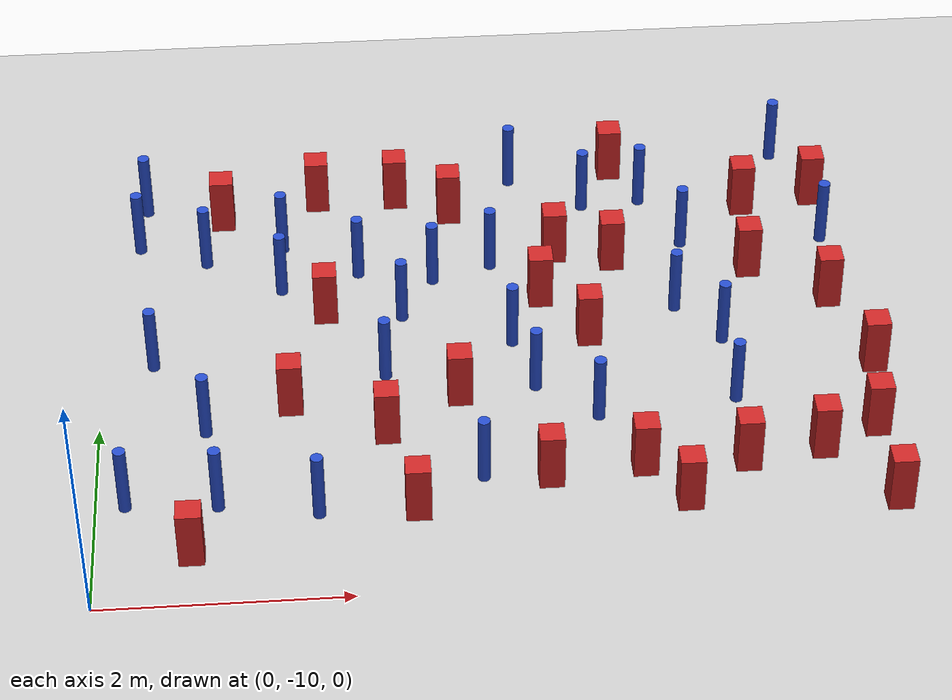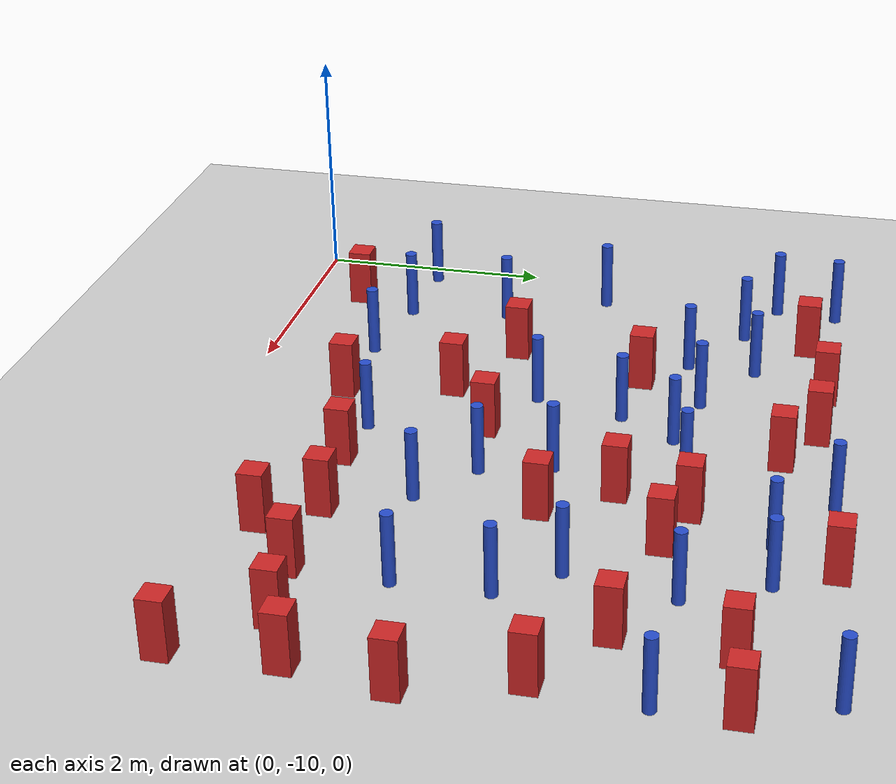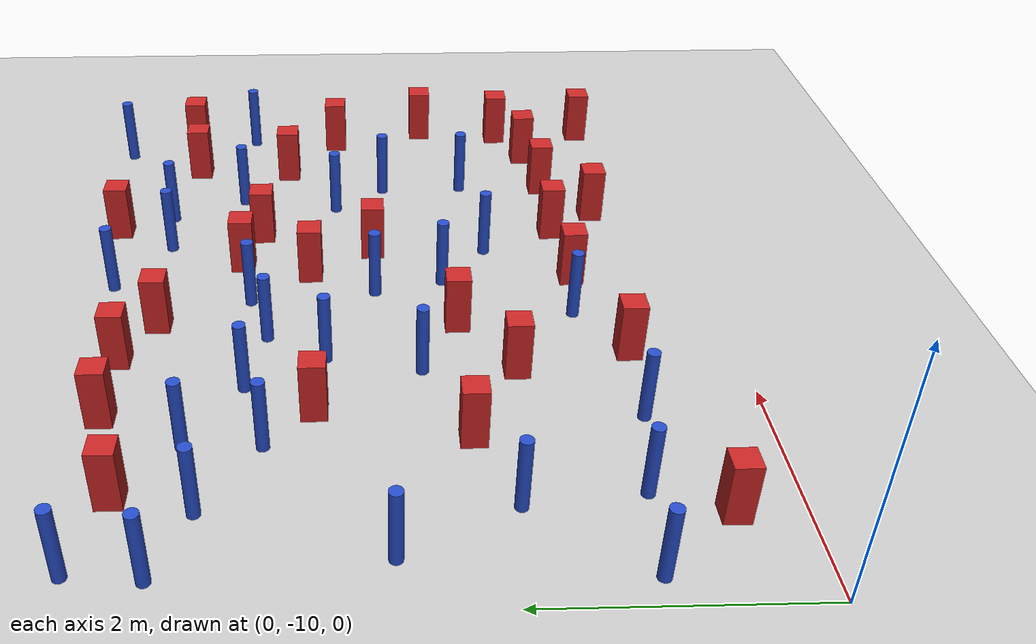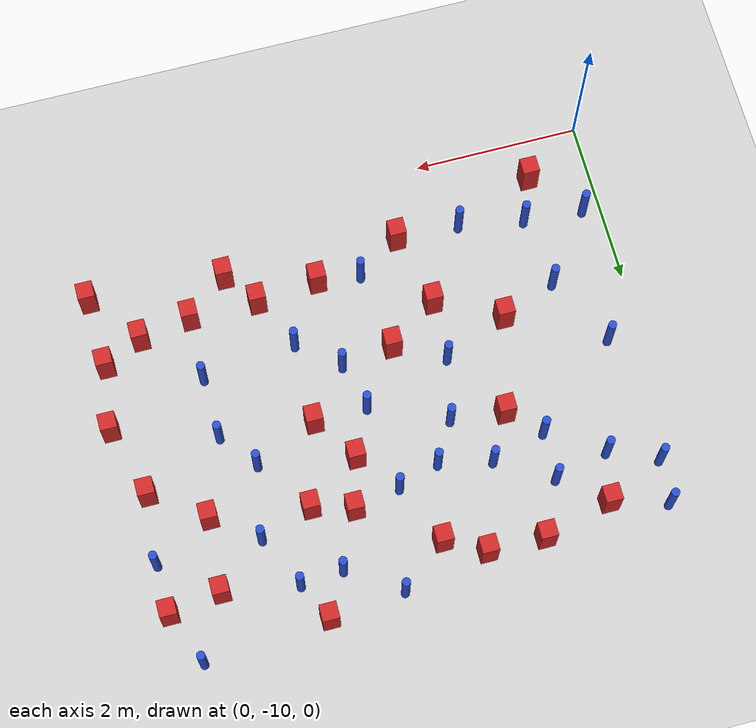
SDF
<sdf version="1.6">
 <world name="default">
  <model name="ground_plane">
   <static>1</static>
   <link name="link">
    <collision name="collision">
     <geometry><plane><normal>0 0 1</normal><size>100 100</size></plane></geometry>
     <surface><friction><ode><mu>100</mu><mu2>50</mu2></ode></friction></surface>
    </collision>
    <visual name="visual">
     <cast_shadows>0</cast_shadows>
     <geometry><plane><normal>0 0 1</normal><size>100 100</size></plane></geometry>
     <material>
      <ambient>1.0 1.0 1.0 1.0</ambient>
      <diffuse>0.8 0.8 0.8 1.0</diffuse>
      <specular>0.01 0.01 0.01 1.000000</specular>
     </material>
    </visual>
   </link>
  </model>
  <model name="pole_obstacle0">
   <static>true</static>
   <pose>3.38922952658 -7.14174087017 -9.47619616065e-06 5.49618799738e-07 2.3631041406e-07 -1.55090534801e-07</pose>
   <link name="link">
    <pose>0 0 0.3 0 -0 0</pose>
    <inertial>
     <mass>1</mass>
     <inertia><ixx>0.145833</ixx><ixy>0</ixy><ixz>0</ixz><iyy>0.145833</iyy><iyz>0</iyz><izz>0.125</izz></inertia>
    </inertial>
    <collision name="collision">
     <geometry><cylinder><radius>0.05</radius><length>.6</length></cylinder></geometry>
    </collision>
    <visual name="visual">
     <geometry><cylinder><radius>0.05</radius><length>.6</length></cylinder></geometry>
     <material>
      <script><name>Gazebo/Blue</name><uri>file://media/materials/scripts/gazebo.material</uri></script>
     </material>
    </visual>
   </link>
  </model>
  <model name="square_post_obstacle3">
   <static>true</static>
   <pose>5.75948002975 -8.64291530314 -6.11067671241e-07 -5.50515727128e-06 -8.79689657224e-07 2.37013304536e-05</pose>
   <link name="link">
    <pose>0 0 0.25 0 -0 0</pose>
    <inertial>
     <mass>100</mass>
     <inertia>
      <ixx>0.166667</ixx>
      <ixy>0</ixy>
      <ixz>0</ixz>
      <iyy>0.166667</iyy>
      <iyz>0</iyz>
      <izz>0.166667</izz>
     </inertia>
    </inertial>
    <collision name="collision"><geometry><box><size>.2 .2 .5</size></box></geometry></collision>
    <visual name="visual">
     <geometry><box><size>.2 .2 .5</size></box></geometry>
     <material>
      <script><name>Gazebo/Red</name><uri>file://media/materials/scripts/gazebo.material</uri></script>
     </material>
    </visual>
   </link>
  </model>
  <model name="square_post_obstacle10">
   <static>true</static>
   <pose>4.31607230512 -8.74429017073 -6.11067671241e-07 -5.50515727128e-06 -8.79689657224e-07 2.37013304536e-05</pose>
   <link name="link">
    <pose>0 0 0.25 0 -0 0</pose>
    <inertial>
     <mass>100</mass>
     <inertia>
      <ixx>0.166667</ixx>
      <ixy>0</ixy>
      <ixz>0</ixz>
      <iyy>0.166667</iyy>
      <iyz>0</iyz>
      <izz>0.166667</izz>
     </inertia>
    </inertial>
    <collision name="collision"><geometry><box><size>.2 .2 .5</size></box></geometry></collision>
    <visual name="visual">
     <geometry><box><size>.2 .2 .5</size></box></geometry>
     <material>
      <script><name>Gazebo/Red</name><uri>file://media/materials/scripts/gazebo.material</uri></script>
     </material>
    </visual>
   </link>
  </model>
  <model name="square_post_obstacle14">
   <static>true</static>
   <pose>5.53762369864 -5.44503028792 -6.11067671241e-07 -5.50515727128e-06 -8.79689657224e-07 2.37013304536e-05</pose>
   <link name="link">
    <pose>0 0 0.25 0 -0 0</pose>
    <inertial>
     <mass>100</mass>
     <inertia>
      <ixx>0.166667</ixx>
      <ixy>0</ixy>
      <ixz>0</ixz>
      <iyy>0.166667</iyy>
      <iyz>0</iyz>
      <izz>0.166667</izz>
     </inertia>
    </inertial>
    <collision name="collision"><geometry><box><size>.2 .2 .5</size></box></geometry></collision>
    <visual name="visual">
     <geometry><box><size>.2 .2 .5</size></box></geometry>
     <material>
      <script><name>Gazebo/Red</name><uri>file://media/materials/scripts/gazebo.material</uri></script>
     </material>
    </visual>
   </link>
  </model>
  <model name="square_post_obstacle17">
   <static>true</static>
   <pose>1.85319412373 -6.67931230852 -6.11067671241e-07 -5.50515727128e-06 -8.79689657224e-07 2.37013304536e-05</pose>
   <link name="link">
    <pose>0 0 0.25 0 -0 0</pose>
    <inertial>
     <mass>100</mass>
     <inertia>
      <ixx>0.166667</ixx>
      <ixy>0</ixy>
      <ixz>0</ixz>
      <iyy>0.166667</iyy>
      <iyz>0</iyz>
      <izz>0.166667</izz>
     </inertia>
    </inertial>
    <collision name="collision"><geometry><box><size>.2 .2 .5</size></box></geometry></collision>
    <visual name="visual">
     <geometry><box><size>.2 .2 .5</size></box></geometry>
     <material>
      <script><name>Gazebo/Red</name><uri>file://media/materials/scripts/gazebo.material</uri></script>
     </material>
    </visual>
   </link>
  </model>
  <model name="pole_obstacle23">
   <static>true</static>
   <pose>0.955390695818 -8.95729510847 -9.47619616065e-06 5.49618799737e-07 2.36310414031e-07 -1.55090534817e-07</pose>
   <link name="link">
    <pose>0 0 0.3 0 -0 0</pose>
    <inertial>
     <mass>1</mass>
     <inertia><ixx>0.145833</ixx><ixy>0</ixy><ixz>0</ixz><iyy>0.145833</iyy><iyz>0</iyz><izz>0.125</izz></inertia>
    </inertial>
    <collision name="collision">
     <geometry><cylinder><radius>0.05</radius><length>.6</length></cylinder></geometry>
    </collision>
    <visual name="visual">
     <geometry><cylinder><radius>0.05</radius><length>.6</length></cylinder></geometry>
     <material>
      <script><name>Gazebo/Blue</name><uri>file://media/materials/scripts/gazebo.material</uri></script>
     </material>
    </visual>
   </link>
  </model>
  <model name="pole_obstacle28">
   <static>true</static>
   <pose>0.278355375065 -5.67092488051 -9.47619616065e-06 5.49618799737e-07 2.36310414067e-07 -1.55090534795e-07</pose>
   <link name="link">
    <pose>0 0 0.3 0 -0 0</pose>
    <inertial>
     <mass>1</mass>
     <inertia><ixx>0.145833</ixx><ixy>0</ixy><ixz>0</ixz><iyy>0.145833</iyy><iyz>0</iyz><izz>0.125</izz></inertia>
    </inertial>
    <collision name="collision">
     <geometry><cylinder><radius>0.05</radius><length>.6</length></cylinder></geometry>
    </collision>
    <visual name="visual">
     <geometry><cylinder><radius>0.05</radius><length>.6</length></cylinder></geometry>
     <material>
      <script><name>Gazebo/Blue</name><uri>file://media/materials/scripts/gazebo.material</uri></script>
     </material>
    </visual>
   </link>
  </model>
  <model name="square_post_obstacle29">
   <static>true</static>
   <pose>2.30405123007 -8.21756652164 -6.11067671241e-07 -5.50515727128e-06 -8.79689657224e-07 2.37013304536e-05</pose>
   <link name="link">
    <pose>0 0 0.25 0 -0 0</pose>
    <inertial>
     <mass>100</mass>
     <inertia>
      <ixx>0.166667</ixx>
      <ixy>0</ixy>
      <ixz>0</ixz>
      <iyy>0.166667</iyy>
      <iyz>0</iyz>
      <izz>0.166667</izz>
     </inertia>
    </inertial>
    <collision name="collision"><geometry><box><size>.2 .2 .5</size></box></geometry></collision>
    <visual name="visual">
     <geometry><box><size>.2 .2 .5</size></box></geometry>
     <material>
      <script><name>Gazebo/Red</name><uri>file://media/materials/scripts/gazebo.material</uri></script>
     </material>
    </visual>
   </link>
  </model>
  <model name="pole_obstacle35">
   <static>true</static>
   <pose>2.32031925398 -7.49279866555 -9.47619616065e-06 5.49618799738e-07 2.3631041406e-07 -1.55090534801e-07</pose>
   <link name="link">
    <pose>0 0 0.3 0 -0 0</pose>
    <inertial>
     <mass>1</mass>
     <inertia><ixx>0.145833</ixx><ixy>0</ixy><ixz>0</ixz><iyy>0.145833</iyy><iyz>0</iyz><izz>0.125</izz></inertia>
    </inertial>
    <collision name="collision">
     <geometry><cylinder><radius>0.05</radius><length>.6</length></cylinder></geometry>
    </collision>
    <visual name="visual">
     <geometry><cylinder><radius>0.05</radius><length>.6</length></cylinder></geometry>
     <material>
      <script><name>Gazebo/Blue</name><uri>file://media/materials/scripts/gazebo.material</uri></script>
     </material>
    </visual>
   </link>
  </model>
  <model name="pole_obstacle40">
   <static>true</static>
   <pose>3.04126461013 -8.76440553091 -9.4761961606e-06 5.49618799729e-07 2.36310414e-07 -1.55090534824e-07</pose>
   <link name="link">
    <pose>0 0 0.3 0 -0 0</pose>
    <inertial>
     <mass>1</mass>
     <inertia><ixx>0.145833</ixx><ixy>0</ixy><ixz>0</ixz><iyy>0.145833</iyy><iyz>0</iyz><izz>0.125</izz></inertia>
    </inertial>
    <collision name="collision">
     <geometry><cylinder><radius>0.05</radius><length>.6</length></cylinder></geometry>
    </collision>
    <visual name="visual">
     <geometry><cylinder><radius>0.05</radius><length>.6</length></cylinder></geometry>
     <material>
      <script><name>Gazebo/Blue</name><uri>file://media/materials/scripts/gazebo.material</uri></script>
     </material>
    </visual>
   </link>
  </model>
  <model name="square_post_obstacle36">
   <static>true</static>
   <pose>4.62269496783 -9.15900267872 -6.11067671241e-07 -5.50515727128e-06 -8.79689657224e-07 2.37013304536e-05</pose>
   <link name="link">
    <pose>0 0 0.25 0 -0 0</pose>
    <inertial>
     <mass>100</mass>
     <inertia>
      <ixx>0.166667</ixx>
      <ixy>0</ixy>
      <ixz>0</ixz>
      <iyy>0.166667</iyy>
      <iyz>0</iyz>
      <izz>0.166667</izz>
     </inertia>
    </inertial>
    <collision name="collision"><geometry><box><size>.2 .2 .5</size></box></geometry></collision>
    <visual name="visual">
     <geometry><box><size>.2 .2 .5</size></box></geometry>
     <material>
      <script><name>Gazebo/Red</name><uri>file://media/materials/scripts/gazebo.material</uri></script>
     </material>
    </visual>
   </link>
  </model>
  <model name="pole_obstacle48">
   <static>true</static>
   <pose>1.48861509337 -6.32588567182 -9.47619616065e-06 5.49618799737e-07 2.36310414061e-07 -1.550905348e-07</pose>
   <link name="link">
    <pose>0 0 0.3 0 -0 0</pose>
    <inertial>
     <mass>1</mass>
     <inertia><ixx>0.145833</ixx><ixy>0</ixy><ixz>0</ixz><iyy>0.145833</iyy><iyz>0</iyz><izz>0.125</izz></inertia>
    </inertial>
    <collision name="collision">
     <geometry><cylinder><radius>0.05</radius><length>.6</length></cylinder></geometry>
    </collision>
    <visual name="visual">
     <geometry><cylinder><radius>0.05</radius><length>.6</length></cylinder></geometry>
     <material>
      <script><name>Gazebo/Blue</name><uri>file://media/materials/scripts/gazebo.material</uri></script>
     </material>
    </visual>
   </link>
  </model>
  <model name="pole_obstacle60">
   <static>true</static>
   <pose>5.15107844197 -7.9755211163 -9.47619616065e-06 5.49618799737e-07 2.36310414033e-07 -1.55090534817e-07</pose>
   <link name="link">
    <pose>0 0 0.3 0 -0 0</pose>
    <inertial>
     <mass>1</mass>
     <inertia><ixx>0.145833</ixx><ixy>0</ixy><ixz>0</ixz><iyy>0.145833</iyy><iyz>0</iyz><izz>0.125</izz></inertia>
    </inertial>
    <collision name="collision">
     <geometry><cylinder><radius>0.05</radius><length>.6</length></cylinder></geometry>
    </collision>
    <visual name="visual">
     <geometry><cylinder><radius>0.05</radius><length>.6</length></cylinder></geometry>
     <material>
      <script><name>Gazebo/Blue</name><uri>file://media/materials/scripts/gazebo.material</uri></script>
     </material>
    </visual>
   </link>
  </model>
  <model name="pole_obstacle61">
   <static>true</static>
   <pose>0.849337117978 -5.91250015087 -9.47619616065e-06 5.49618799737e-07 2.36310414065e-07 -1.55090534796e-07</pose>
   <link name="link">
    <pose>0 0 0.3 0 -0 0</pose>
    <inertial>
     <mass>1</mass>
     <inertia><ixx>0.145833</ixx><ixy>0</ixy><ixz>0</ixz><iyy>0.145833</iyy><iyz>0</iyz><izz>0.125</izz></inertia>
    </inertial>
    <collision name="collision">
     <geometry><cylinder><radius>0.05</radius><length>.6</length></cylinder></geometry>
    </collision>
    <visual name="visual">
     <geometry><cylinder><radius>0.05</radius><length>.6</length></cylinder></geometry>
     <material>
      <script><name>Gazebo/Blue</name><uri>file://media/materials/scripts/gazebo.material</uri></script>
     </material>
    </visual>
   </link>
  </model>
  <model name="pole_obstacle67">
   <static>true</static>
   <pose>1.50597967521 -5.75054505771 -9.47619616065e-06 5.49618799737e-07 2.36310414061e-07 -1.550905348e-07</pose>
   <link name="link">
    <pose>0 0 0.3 0 -0 0</pose>
    <inertial>
     <mass>1</mass>
     <inertia><ixx>0.145833</ixx><ixy>0</ixy><ixz>0</ixz><iyy>0.145833</iyy><iyz>0</iyz><izz>0.125</izz></inertia>
    </inertial>
    <collision name="collision">
     <geometry><cylinder><radius>0.05</radius><length>.6</length></cylinder></geometry>
    </collision>
    <visual name="visual">
     <geometry><cylinder><radius>0.05</radius><length>.6</length></cylinder></geometry>
     <material>
      <script><name>Gazebo/Blue</name><uri>file://media/materials/scripts/gazebo.material</uri></script>
     </material>
    </visual>
   </link>
  </model>
  <model name="square_post_obstacle54">
   <static>true</static>
   <pose>2.96192295163 -5.38280044245 -6.11067671241e-07 -5.50515727128e-06 -8.79689657224e-07 2.37013304536e-05</pose>
   <link name="link">
    <pose>0 0 0.25 0 -0 0</pose>
    <inertial>
     <mass>100</mass>
     <inertia>
      <ixx>0.166667</ixx>
      <ixy>0</ixy>
      <ixz>0</ixz>
      <iyy>0.166667</iyy>
      <iyz>0</iyz>
      <izz>0.166667</izz>
     </inertia>
    </inertial>
    <collision name="collision"><geometry><box><size>.2 .2 .5</size></box></geometry></collision>
    <visual name="visual">
     <geometry><box><size>.2 .2 .5</size></box></geometry>
     <material>
      <script><name>Gazebo/Red</name><uri>file://media/materials/scripts/gazebo.material</uri></script>
     </material>
    </visual>
   </link>
  </model>
  <model name="square_post_obstacle57">
   <static>true</static>
   <pose>6.15910161408 -5.34775371636 -6.11067671241e-07 -5.50515727128e-06 -8.79689657224e-07 2.37013304536e-05</pose>
   <link name="link">
    <pose>0 0 0.25 0 -0 0</pose>
    <inertial>
     <mass>100</mass>
     <inertia>
      <ixx>0.166667</ixx>
      <ixy>0</ixy>
      <ixz>0</ixz>
      <iyy>0.166667</iyy>
      <iyz>0</iyz>
      <izz>0.166667</izz>
     </inertia>
    </inertial>
    <collision name="collision"><geometry><box><size>.2 .2 .5</size></box></geometry></collision>
    <visual name="visual">
     <geometry><box><size>.2 .2 .5</size></box></geometry>
     <material>
      <script><name>Gazebo/Red</name><uri>file://media/materials/scripts/gazebo.material</uri></script>
     </material>
    </visual>
   </link>
  </model>
  <model name="square_post_obstacle63">
   <static>true</static>
   <pose>4.03128358904 -7.12685137249 -6.11067671241e-07 -5.50515727128e-06 -8.79689657224e-07 2.37013304536e-05</pose>
   <link name="link">
    <pose>0 0 0.25 0 -0 0</pose>
    <inertial>
     <mass>100</mass>
     <inertia>
      <ixx>0.166667</ixx>
      <ixy>0</ixy>
      <ixz>0</ixz>
      <iyy>0.166667</iyy>
      <iyz>0</iyz>
      <izz>0.166667</izz>
     </inertia>
    </inertial>
    <collision name="collision"><geometry><box><size>.2 .2 .5</size></box></geometry></collision>
    <visual name="visual">
     <geometry><box><size>.2 .2 .5</size></box></geometry>
     <material>
      <script><name>Gazebo/Red</name><uri>file://media/materials/scripts/gazebo.material</uri></script>
     </material>
    </visual>
   </link>
  </model>
  <model name="square_post_obstacle65">
   <static>true</static>
   <pose>2.50802618297 -9.11794423692 -6.11067671241e-07 -5.50515727128e-06 -8.79689657224e-07 2.37013304536e-05</pose>
   <link name="link">
    <pose>0 0 0.25 0 -0 0</pose>
    <inertial>
     <mass>100</mass>
     <inertia>
      <ixx>0.166667</ixx>
      <ixy>0</ixy>
      <ixz>0</ixz>
      <iyy>0.166667</iyy>
      <iyz>0</iyz>
      <izz>0.166667</izz>
     </inertia>
    </inertial>
    <collision name="collision"><geometry><box><size>.2 .2 .5</size></box></geometry></collision>
    <visual name="visual">
     <geometry><box><size>.2 .2 .5</size></box></geometry>
     <material>
      <script><name>Gazebo/Red</name><uri>file://media/materials/scripts/gazebo.material</uri></script>
     </material>
    </visual>
   </link>
  </model>
  <model name="square_post_obstacle68">
   <static>true</static>
   <pose>6.33816880264 -7.63224472341 -6.11067671241e-07 -5.50515727128e-06 -8.79689657224e-07 2.37013304536e-05</pose>
   <link name="link">
    <pose>0 0 0.25 0 -0 0</pose>
    <inertial>
     <mass>100</mass>
     <inertia>
      <ixx>0.166667</ixx>
      <ixy>0</ixy>
      <ixz>0</ixz>
      <iyy>0.166667</iyy>
      <iyz>0</iyz>
      <izz>0.166667</izz>
     </inertia>
    </inertial>
    <collision name="collision"><geometry><box><size>.2 .2 .5</size></box></geometry></collision>
    <visual name="visual">
     <geometry><box><size>.2 .2 .5</size></box></geometry>
     <material>
      <script><name>Gazebo/Red</name><uri>file://media/materials/scripts/gazebo.material</uri></script>
     </material>
    </visual>
   </link>
  </model>
  <model name="square_post_obstacle76">
   <static>true</static>
   <pose>3.56611292141 -8.82281130439 -6.11067671241e-07 -5.50515727128e-06 -8.79689657224e-07 2.37013304536e-05</pose>
   <link name="link">
    <pose>0 0 0.25 0 -0 0</pose>
    <inertial>
     <mass>100</mass>
     <inertia>
      <ixx>0.166667</ixx>
      <ixy>0</ixy>
      <ixz>0</ixz>
      <iyy>0.166667</iyy>
      <iyz>0</iyz>
      <izz>0.166667</izz>
     </inertia>
    </inertial>
    <collision name="collision"><geometry><box><size>.2 .2 .5</size></box></geometry></collision>
    <visual name="visual">
     <geometry><box><size>.2 .2 .5</size></box></geometry>
     <material>
      <script><name>Gazebo/Red</name><uri>file://media/materials/scripts/gazebo.material</uri></script>
     </material>
    </visual>
   </link>
  </model>
  <model name="square_post_obstacle78">
   <static>true</static>
   <pose>1.82032950857 -5.12440968081 -6.11067671241e-07 -5.50515727128e-06 -8.79689657224e-07 2.37013304536e-05</pose>
   <link name="link">
    <pose>0 0 0.25 0 -0 0</pose>
    <inertial>
     <mass>100</mass>
     <inertia>
      <ixx>0.166667</ixx>
      <ixy>0</ixy>
      <ixz>0</ixz>
      <iyy>0.166667</iyy>
      <iyz>0</iyz>
      <izz>0.166667</izz>
     </inertia>
    </inertial>
    <collision name="collision"><geometry><box><size>.2 .2 .5</size></box></geometry></collision>
    <visual name="visual">
     <geometry><box><size>.2 .2 .5</size></box></geometry>
     <material>
      <script><name>Gazebo/Red</name><uri>file://media/materials/scripts/gazebo.material</uri></script>
     </material>
    </visual>
   </link>
  </model>
  <model name="pole_obstacle89">
   <static>true</static>
   <pose>4.01613113563 -8.11332784406 -9.47619616065e-06 5.49618799737e-07 2.36310414062e-07 -1.55090534799e-07</pose>
   <link name="link">
    <pose>0 0 0.3 0 -0 0</pose>
    <inertial>
     <mass>1</mass>
     <inertia><ixx>0.145833</ixx><ixy>0</ixy><ixz>0</ixz><iyy>0.145833</iyy><iyz>0</iyz><izz>0.125</izz></inertia>
    </inertial>
    <collision name="collision">
     <geometry><cylinder><radius>0.05</radius><length>.6</length></cylinder></geometry>
    </collision>
    <visual name="visual">
     <geometry><cylinder><radius>0.05</radius><length>.6</length></cylinder></geometry>
     <material>
      <script><name>Gazebo/Blue</name><uri>file://media/materials/scripts/gazebo.material</uri></script>
     </material>
    </visual>
   </link>
  </model>
  <model name="pole_obstacle92">
   <static>true</static>
   <pose>2.49112387142 -6.74830570431 -9.47619616065e-06 5.49618799738e-07 2.3631041406e-07 -1.55090534801e-07</pose>
   <link name="link">
    <pose>0 0 0.3 0 -0 0</pose>
    <inertial>
     <mass>1</mass>
     <inertia><ixx>0.145833</ixx><ixy>0</ixy><ixz>0</ixz><iyy>0.145833</iyy><iyz>0</iyz><izz>0.125</izz></inertia>
    </inertial>
    <collision name="collision">
     <geometry><cylinder><radius>0.05</radius><length>.6</length></cylinder></geometry>
    </collision>
    <visual name="visual">
     <geometry><cylinder><radius>0.05</radius><length>.6</length></cylinder></geometry>
     <material>
      <script><name>Gazebo/Blue</name><uri>file://media/materials/scripts/gazebo.material</uri></script>
     </material>
    </visual>
   </link>
  </model>
  <model name="square_post_obstacle98">
   <static>true</static>
   <pose>4.31808689256 -6.141084835 -6.11067671241e-07 -5.50515727128e-06 -8.79689657224e-07 2.37013304536e-05</pose>
   <link name="link">
    <pose>0 0 0.25 0 -0 0</pose>
    <inertial>
     <mass>100</mass>
     <inertia>
      <ixx>0.166667</ixx>
      <ixy>0</ixy>
      <ixz>0</ixz>
      <iyy>0.166667</iyy>
      <iyz>0</iyz>
      <izz>0.166667</izz>
     </inertia>
    </inertial>
    <collision name="collision"><geometry><box><size>.2 .2 .5</size></box></geometry></collision>
    <visual name="visual">
     <geometry><box><size>.2 .2 .5</size></box></geometry>
     <material>
      <script><name>Gazebo/Red</name><uri>file://media/materials/scripts/gazebo.material</uri></script>
     </material>
    </visual>
   </link>
  </model>
  <model name="pole_obstacle106">
   <static>true</static>
   <pose>1.73808366316 -9.09273727942 -9.47619616065e-06 5.49618799737e-07 2.36310414046e-07 -1.55090534809e-07</pose>
   <link name="link">
    <pose>0 0 0.3 0 -0 0</pose>
    <inertial>
     <mass>1</mass>
     <inertia><ixx>0.145833</ixx><ixy>0</ixy><ixz>0</ixz><iyy>0.145833</iyy><iyz>0</iyz><izz>0.125</izz></inertia>
    </inertial>
    <collision name="collision">
     <geometry><cylinder><radius>0.05</radius><length>.6</length></cylinder></geometry>
    </collision>
    <visual name="visual">
     <geometry><cylinder><radius>0.05</radius><length>.6</length></cylinder></geometry>
     <material>
      <script><name>Gazebo/Blue</name><uri>file://media/materials/scripts/gazebo.material</uri></script>
     </material>
    </visual>
   </link>
  </model>
  <model name="square_post_obstacle101">
   <static>true</static>
   <pose>5.47308047304 -6.31703522659 -6.11067671241e-07 -5.50515727128e-06 -8.79689657224e-07 2.37013304536e-05</pose>
   <link name="link">
    <pose>0 0 0.25 0 -0 0</pose>
    <inertial>
     <mass>100</mass>
     <inertia>
      <ixx>0.166667</ixx>
      <ixy>0</ixy>
      <ixz>0</ixz>
      <iyy>0.166667</iyy>
      <iyz>0</iyz>
      <izz>0.166667</izz>
     </inertia>
    </inertial>
    <collision name="collision"><geometry><box><size>.2 .2 .5</size></box></geometry></collision>
    <visual name="visual">
     <geometry><box><size>.2 .2 .5</size></box></geometry>
     <material>
      <script><name>Gazebo/Red</name><uri>file://media/materials/scripts/gazebo.material</uri></script>
     </material>
    </visual>
   </link>
  </model>
  <model name="square_post_obstacle108">
   <static>true</static>
   <pose>0.993194571092 -5.34223556679 -6.11067671241e-07 -5.50515727128e-06 -8.79689657224e-07 2.37013304536e-05</pose>
   <link name="link">
    <pose>0 0 0.25 0 -0 0</pose>
    <inertial>
     <mass>100</mass>
     <inertia>
      <ixx>0.166667</ixx>
      <ixy>0</ixy>
      <ixz>0</ixz>
      <iyy>0.166667</iyy>
      <iyz>0</iyz>
      <izz>0.166667</izz>
     </inertia>
    </inertial>
    <collision name="collision"><geometry><box><size>.2 .2 .5</size></box></geometry></collision>
    <visual name="visual">
     <geometry><box><size>.2 .2 .5</size></box></geometry>
     <material>
      <script><name>Gazebo/Red</name><uri>file://media/materials/scripts/gazebo.material</uri></script>
     </material>
    </visual>
   </link>
  </model>
  <model name="pole_obstacle115">
   <static>true</static>
   <pose>0.230384471261 -8.9089196223 -9.47619616065e-06 5.49618799738e-07 2.36310414036e-07 -1.55090534814e-07</pose>
   <link name="link">
    <pose>0 0 0.3 0 -0 0</pose>
    <inertial>
     <mass>1</mass>
     <inertia><ixx>0.145833</ixx><ixy>0</ixy><ixz>0</ixz><iyy>0.145833</iyy><iyz>0</iyz><izz>0.125</izz></inertia>
    </inertial>
    <collision name="collision">
     <geometry><cylinder><radius>0.05</radius><length>.6</length></cylinder></geometry>
    </collision>
    <visual name="visual">
     <geometry><cylinder><radius>0.05</radius><length>.6</length></cylinder></geometry>
     <material>
      <script><name>Gazebo/Blue</name><uri>file://media/materials/scripts/gazebo.material</uri></script>
     </material>
    </visual>
   </link>
  </model>
  <model name="square_post_obstacle112">
   <static>true</static>
   <pose>2.50397205284 -5.13240409526 -6.11067671241e-07 -5.50515727128e-06 -8.79689657224e-07 2.37013304536e-05</pose>
   <link name="link">
    <pose>0 0 0.25 0 -0 0</pose>
    <inertial>
     <mass>100</mass>
     <inertia>
      <ixx>0.166667</ixx>
      <ixy>0</ixy>
      <ixz>0</ixz>
      <iyy>0.166667</iyy>
      <iyz>0</iyz>
      <izz>0.166667</izz>
     </inertia>
    </inertial>
    <collision name="collision"><geometry><box><size>.2 .2 .5</size></box></geometry></collision>
    <visual name="visual">
     <geometry><box><size>.2 .2 .5</size></box></geometry>
     <material>
      <script><name>Gazebo/Red</name><uri>file://media/materials/scripts/gazebo.material</uri></script>
     </material>
    </visual>
   </link>
  </model>
  <model name="square_post_obstacle113">
   <static>true</static>
   <pose>6.25167337843 -9.26839451093 -6.11067671241e-07 -5.50515727128e-06 -8.79689657224e-07 2.37013304536e-05</pose>
   <link name="link">
    <pose>0 0 0.25 0 -0 0</pose>
    <inertial>
     <mass>100</mass>
     <inertia>
      <ixx>0.166667</ixx>
      <ixy>0</ixy>
      <ixz>0</ixz>
      <iyy>0.166667</iyy>
      <iyz>0</iyz>
      <izz>0.166667</izz>
     </inertia>
    </inertial>
    <collision name="collision"><geometry><box><size>.2 .2 .5</size></box></geometry></collision>
    <visual name="visual">
     <geometry><box><size>.2 .2 .5</size></box></geometry>
     <material>
      <script><name>Gazebo/Red</name><uri>file://media/materials/scripts/gazebo.material</uri></script>
     </material>
    </visual>
   </link>
  </model>
  <model name="pole_obstacle118">
   <static>true</static>
   <pose>3.27608082071 -6.10651741698 -9.47619616065e-06 5.49618799738e-07 2.3631041406e-07 -1.55090534801e-07</pose>
   <link name="link">
    <pose>0 0 0.3 0 -0 0</pose>
    <inertial>
     <mass>1</mass>
     <inertia><ixx>0.145833</ixx><ixy>0</ixy><ixz>0</ixz><iyy>0.145833</iyy><iyz>0</iyz><izz>0.125</izz></inertia>
    </inertial>
    <collision name="collision">
     <geometry><cylinder><radius>0.05</radius><length>.6</length></cylinder></geometry>
    </collision>
    <visual name="visual">
     <geometry><cylinder><radius>0.05</radius><length>.6</length></cylinder></geometry>
     <material>
      <script><name>Gazebo/Blue</name><uri>file://media/materials/scripts/gazebo.material</uri></script>
     </material>
    </visual>
   </link>
  </model>
  <model name="pole_obstacle119">
   <static>true</static>
   <pose>2.14529427332 -6.1405002201 -9.47619616065e-06 5.49618799738e-07 2.3631041406e-07 -1.55090534801e-07</pose>
   <link name="link">
    <pose>0 0 0.3 0 -0 0</pose>
    <inertial>
     <mass>1</mass>
     <inertia><ixx>0.145833</ixx><ixy>0</ixy><ixz>0</ixz><iyy>0.145833</iyy><iyz>0</iyz><izz>0.125</izz></inertia>
    </inertial>
    <collision name="collision">
     <geometry><cylinder><radius>0.05</radius><length>.6</length></cylinder></geometry>
    </collision>
    <visual name="visual">
     <geometry><cylinder><radius>0.05</radius><length>.6</length></cylinder></geometry>
     <material>
      <script><name>Gazebo/Blue</name><uri>file://media/materials/scripts/gazebo.material</uri></script>
     </material>
    </visual>
   </link>
  </model>
  <model name="pole_obstacle129">
   <static>true</static>
   <pose>4.7895659463 -6.78787291017 -9.47619616065e-06 5.49618799737e-07 2.36310414037e-07 -1.55090534814e-07</pose>
   <link name="link">
    <pose>0 0 0.3 0 -0 0</pose>
    <inertial>
     <mass>1</mass>
     <inertia><ixx>0.145833</ixx><ixy>0</ixy><ixz>0</ixz><iyy>0.145833</iyy><iyz>0</iyz><izz>0.125</izz></inertia>
    </inertial>
    <collision name="collision">
     <geometry><cylinder><radius>0.05</radius><length>.6</length></cylinder></geometry>
    </collision>
    <visual name="visual">
     <geometry><cylinder><radius>0.05</radius><length>.6</length></cylinder></geometry>
     <material>
      <script><name>Gazebo/Blue</name><uri>file://media/materials/scripts/gazebo.material</uri></script>
     </material>
    </visual>
   </link>
  </model>
  <model name="pole_obstacle150">
   <static>true</static>
   <pose>6.17144119666 -5.93536041354 -9.47619616065e-06 5.49618799737e-07 2.36310414037e-07 -1.55090534814e-07</pose>
   <link name="link">
    <pose>0 0 0.3 0 -0 0</pose>
    <inertial>
     <mass>1</mass>
     <inertia><ixx>0.145833</ixx><ixy>0</ixy><ixz>0</ixz><iyy>0.145833</iyy><iyz>0</iyz><izz>0.125</izz></inertia>
    </inertial>
    <collision name="collision">
     <geometry><cylinder><radius>0.05</radius><length>.6</length></cylinder></geometry>
    </collision>
    <visual name="visual">
     <geometry><cylinder><radius>0.05</radius><length>.6</length></cylinder></geometry>
     <material>
      <script><name>Gazebo/Blue</name><uri>file://media/materials/scripts/gazebo.material</uri></script>
     </material>
    </visual>
   </link>
  </model>
  <model name="pole_obstacle155">
   <static>true</static>
   <pose>0.420599208297 -7.24214543474 -9.47619616065e-06 5.49618799737e-07 2.36310414065e-07 -1.55090534796e-07</pose>
   <link name="link">
    <pose>0 0 0.3 0 -0 0</pose>
    <inertial>
     <mass>1</mass>
     <inertia><ixx>0.145833</ixx><ixy>0</ixy><ixz>0</ixz><iyy>0.145833</iyy><iyz>0</iyz><izz>0.125</izz></inertia>
    </inertial>
    <collision name="collision">
     <geometry><cylinder><radius>0.05</radius><length>.6</length></cylinder></geometry>
    </collision>
    <visual name="visual">
     <geometry><cylinder><radius>0.05</radius><length>.6</length></cylinder></geometry>
     <material>
      <script><name>Gazebo/Blue</name><uri>file://media/materials/scripts/gazebo.material</uri></script>
     </material>
    </visual>
   </link>
  </model>
  <model name="pole_obstacle161">
   <static>true</static>
   <pose>4.14055392437 -5.3350134524 -9.47619616065e-06 5.49618799737e-07 2.36310414037e-07 -1.55090534814e-07</pose>
   <link name="link">
    <pose>0 0 0.3 0 -0 0</pose>
    <inertial>
     <mass>1</mass>
     <inertia><ixx>0.145833</ixx><ixy>0</ixy><ixz>0</ixz><iyy>0.145833</iyy><iyz>0</iyz><izz>0.125</izz></inertia>
    </inertial>
    <collision name="collision">
     <geometry><cylinder><radius>0.05</radius><length>.6</length></cylinder></geometry>
    </collision>
    <visual name="visual">
     <geometry><cylinder><radius>0.05</radius><length>.6</length></cylinder></geometry>
     <material>
      <script><name>Gazebo/Blue</name><uri>file://media/materials/scripts/gazebo.material</uri></script>
     </material>
    </visual>
   </link>
  </model>
  <model name="pole_obstacle165">
   <static>true</static>
   <pose>4.64906240537 -5.28919394489 -9.47619616065e-06 5.49618799737e-07 2.36310414037e-07 -1.55090534814e-07</pose>
   <link name="link">
    <pose>0 0 0.3 0 -0 0</pose>
    <inertial>
     <mass>1</mass>
     <inertia><ixx>0.145833</ixx><ixy>0</ixy><ixz>0</ixz><iyy>0.145833</iyy><iyz>0</iyz><izz>0.125</izz></inertia>
    </inertial>
    <collision name="collision">
     <geometry><cylinder><radius>0.05</radius><length>.6</length></cylinder></geometry>
    </collision>
    <visual name="visual">
     <geometry><cylinder><radius>0.05</radius><length>.6</length></cylinder></geometry>
     <material>
      <script><name>Gazebo/Blue</name><uri>file://media/materials/scripts/gazebo.material</uri></script>
     </material>
    </visual>
   </link>
  </model>
  <model name="square_post_obstacle166">
   <static>true</static>
   <pose>1.53829761872 -7.82396840137 -6.11067671241e-07 -5.50515727128e-06 -8.79689657224e-07 2.37013304536e-05</pose>
   <link name="link">
    <pose>0 0 0.25 0 -0 0</pose>
    <inertial>
     <mass>100</mass>
     <inertia>
      <ixx>0.166667</ixx>
      <ixy>0</ixy>
      <ixz>0</ixz>
      <iyy>0.166667</iyy>
      <iyz>0</iyz>
      <izz>0.166667</izz>
     </inertia>
    </inertial>
    <collision name="collision"><geometry><box><size>.2 .2 .5</size></box></geometry></collision>
    <visual name="visual">
     <geometry><box><size>.2 .2 .5</size></box></geometry>
     <material>
      <script><name>Gazebo/Red</name><uri>file://media/materials/scripts/gazebo.material</uri></script>
     </material>
    </visual>
   </link>
  </model>
  <model name="square_post_obstacle167">
   <static>true</static>
   <pose>5.13443472084 -8.74629343601 -6.11067671241e-07 -5.50515727128e-06 -8.79689657224e-07 2.37013304536e-05</pose>
   <link name="link">
    <pose>0 0 0.25 0 -0 0</pose>
    <inertial>
     <mass>100</mass>
     <inertia>
      <ixx>0.166667</ixx>
      <ixy>0</ixy>
      <ixz>0</ixz>
      <iyy>0.166667</iyy>
      <iyz>0</iyz>
      <izz>0.166667</izz>
     </inertia>
    </inertial>
    <collision name="collision"><geometry><box><size>.2 .2 .5</size></box></geometry></collision>
    <visual name="visual">
     <geometry><box><size>.2 .2 .5</size></box></geometry>
     <material>
      <script><name>Gazebo/Red</name><uri>file://media/materials/scripts/gazebo.material</uri></script>
     </material>
    </visual>
   </link>
  </model>
  <model name="square_post_obstacle168">
   <static>true</static>
   <pose>6.09328356098 -6.7672923285 -6.11067671241e-07 -5.50515727128e-06 -8.79689657224e-07 2.37013304536e-05</pose>
   <link name="link">
    <pose>0 0 0.25 0 -0 0</pose>
    <inertial>
     <mass>100</mass>
     <inertia>
      <ixx>0.166667</ixx>
      <ixy>0</ixy>
      <ixz>0</ixz>
      <iyy>0.166667</iyy>
      <iyz>0</iyz>
      <izz>0.166667</izz>
     </inertia>
    </inertial>
    <collision name="collision"><geometry><box><size>.2 .2 .5</size></box></geometry></collision>
    <visual name="visual">
     <geometry><box><size>.2 .2 .5</size></box></geometry>
     <material>
      <script><name>Gazebo/Red</name><uri>file://media/materials/scripts/gazebo.material</uri></script>
     </material>
    </visual>
   </link>
  </model>
  <model name="pole_obstacle176">
   <static>true</static>
   <pose>0.854717124222 -8.08908433839 -9.47619616065e-06 5.49618799737e-07 2.36310414038e-07 -1.55090534813e-07</pose>
   <link name="link">
    <pose>0 0 0.3 0 -0 0</pose>
    <inertial>
     <mass>1</mass>
     <inertia><ixx>0.145833</ixx><ixy>0</ixy><ixz>0</ixz><iyy>0.145833</iyy><iyz>0</iyz><izz>0.125</izz></inertia>
    </inertial>
    <collision name="collision">
     <geometry><cylinder><radius>0.05</radius><length>.6</length></cylinder></geometry>
    </collision>
    <visual name="visual">
     <geometry><cylinder><radius>0.05</radius><length>.6</length></cylinder></geometry>
     <material>
      <script><name>Gazebo/Blue</name><uri>file://media/materials/scripts/gazebo.material</uri></script>
     </material>
    </visual>
   </link>
  </model>
  <model name="pole_obstacle178">
   <static>true</static>
   <pose>2.77378250752 -6.27412741733 -9.47619616065e-06 5.49618799738e-07 2.3631041406e-07 -1.55090534801e-07</pose>
   <link name="link">
    <pose>0 0 0.3 0 -0 0</pose>
    <inertial>
     <mass>1</mass>
     <inertia><ixx>0.145833</ixx><ixy>0</ixy><ixz>0</ixz><iyy>0.145833</iyy><iyz>0</iyz><izz>0.125</izz></inertia>
    </inertial>
    <collision name="collision">
     <geometry><cylinder><radius>0.05</radius><length>.6</length></cylinder></geometry>
    </collision>
    <visual name="visual">
     <geometry><cylinder><radius>0.05</radius><length>.6</length></cylinder></geometry>
     <material>
      <script><name>Gazebo/Blue</name><uri>file://media/materials/scripts/gazebo.material</uri></script>
     </material>
    </visual>
   </link>
  </model>
  <model name="pole_obstacle179">
   <static>true</static>
   <pose>3.52402665322 -4.92188811646 -9.47619616065e-06 5.49618799738e-07 2.3631041406e-07 -1.55090534801e-07</pose>
   <link name="link">
    <pose>0 0 0.3 0 -0 0</pose>
    <inertial>
     <mass>1</mass>
     <inertia><ixx>0.145833</ixx><ixy>0</ixy><ixz>0</ixz><iyy>0.145833</iyy><iyz>0</iyz><izz>0.125</izz></inertia>
    </inertial>
    <collision name="collision">
     <geometry><cylinder><radius>0.05</radius><length>.6</length></cylinder></geometry>
    </collision>
    <visual name="visual">
     <geometry><cylinder><radius>0.05</radius><length>.6</length></cylinder></geometry>
     <material>
      <script><name>Gazebo/Blue</name><uri>file://media/materials/scripts/gazebo.material</uri></script>
     </material>
    </visual>
   </link>
  </model>
  <model name="pole_obstacle185">
   <static>true</static>
   <pose>5.1365744617 -7.23071482952 -9.47619616065e-06 5.49618799737e-07 2.36310414037e-07 -1.55090534814e-07</pose>
   <link name="link">
    <pose>0 0 0.3 0 -0 0</pose>
    <inertial>
     <mass>1</mass>
     <inertia><ixx>0.145833</ixx><ixy>0</ixy><ixz>0</ixz><iyy>0.145833</iyy><iyz>0</iyz><izz>0.125</izz></inertia>
    </inertial>
    <collision name="collision">
     <geometry><cylinder><radius>0.05</radius><length>.6</length></cylinder></geometry>
    </collision>
    <visual name="visual">
     <geometry><cylinder><radius>0.05</radius><length>.6</length></cylinder></geometry>
     <material>
      <script><name>Gazebo/Blue</name><uri>file://media/materials/scripts/gazebo.material</uri></script>
     </material>
    </visual>
   </link>
  </model>
  <model name="square_post_obstacle190">
   <static>true</static>
   <pose>2.91165599225 -7.80119497792 -6.11067671241e-07 -5.50515727128e-06 -8.79689657224e-07 2.37013304536e-05</pose>
   <link name="link">
    <pose>0 0 0.25 0 -0 0</pose>
    <inertial>
     <mass>100</mass>
     <inertia>
      <ixx>0.166667</ixx>
      <ixy>0</ixy>
      <ixz>0</ixz>
      <iyy>0.166667</iyy>
      <iyz>0</iyz>
      <izz>0.166667</izz>
     </inertia>
    </inertial>
    <collision name="collision"><geometry><box><size>.2 .2 .5</size></box></geometry></collision>
    <visual name="visual">
     <geometry><box><size>.2 .2 .5</size></box></geometry>
     <material>
      <script><name>Gazebo/Red</name><uri>file://media/materials/scripts/gazebo.material</uri></script>
     </material>
    </visual>
   </link>
  </model>
  <model name="square_post_obstacle195">
   <static>true</static>
   <pose>3.83595121317 -5.99800070089 -6.11067671241e-07 -5.50515727128e-06 -8.79689657224e-07 2.37013304536e-05</pose>
   <link name="link">
    <pose>0 0 0.25 0 -0 0</pose>
    <inertial>
     <mass>100</mass>
     <inertia>
      <ixx>0.166667</ixx>
      <ixy>0</ixy>
      <ixz>0</ixz>
      <iyy>0.166667</iyy>
      <iyz>0</iyz>
      <izz>0.166667</izz>
     </inertia>
    </inertial>
    <collision name="collision"><geometry><box><size>.2 .2 .5</size></box></geometry></collision>
    <visual name="visual">
     <geometry><box><size>.2 .2 .5</size></box></geometry>
     <material>
      <script><name>Gazebo/Red</name><uri>file://media/materials/scripts/gazebo.material</uri></script>
     </material>
    </visual>
   </link>
  </model>
  <model name="square_post_obstacle196">
   <static>true</static>
   <pose>6.2251559342 -8.41263386242 -6.11067671241e-07 -5.50515727128e-06 -8.79689657224e-07 2.37013304536e-05</pose>
   <link name="link">
    <pose>0 0 0.25 0 -0 0</pose>
    <inertial>
     <mass>100</mass>
     <inertia>
      <ixx>0.166667</ixx>
      <ixy>0</ixy>
      <ixz>0</ixz>
      <iyy>0.166667</iyy>
      <iyz>0</iyz>
      <izz>0.166667</izz>
     </inertia>
    </inertial>
    <collision name="collision"><geometry><box><size>.2 .2 .5</size></box></geometry></collision>
    <visual name="visual">
     <geometry><box><size>.2 .2 .5</size></box></geometry>
     <material>
      <script><name>Gazebo/Red</name><uri>file://media/materials/scripts/gazebo.material</uri></script>
     </material>
    </visual>
   </link>
  </model>
  <model name="square_post_obstacle197">
   <static>true</static>
   <pose>3.66768657727 -6.5915032695 -6.11067671241e-07 -5.50515727128e-06 -8.79689657224e-07 2.37013304536e-05</pose>
   <link name="link">
    <pose>0 0 0.25 0 -0 0</pose>
    <inertial>
     <mass>100</mass>
     <inertia>
      <ixx>0.166667</ixx>
      <ixy>0</ixy>
      <ixz>0</ixz>
      <iyy>0.166667</iyy>
      <iyz>0</iyz>
      <izz>0.166667</izz>
     </inertia>
    </inertial>
    <collision name="collision"><geometry><box><size>.2 .2 .5</size></box></geometry></collision>
    <visual name="visual">
     <geometry><box><size>.2 .2 .5</size></box></geometry>
     <material>
      <script><name>Gazebo/Red</name><uri>file://media/materials/scripts/gazebo.material</uri></script>
     </material>
    </visual>
   </link>
  </model>
  <model name="square_post_obstacle198">
   <static>true</static>
   <pose>0.755869038201 -9.48568268944 -6.11067671241e-07 -5.50515727128e-06 -8.79689657224e-07 2.37013304536e-05</pose>
   <link name="link">
    <pose>0 0 0.25 0 -0 0</pose>
    <inertial>
     <mass>100</mass>
     <inertia>
      <ixx>0.166667</ixx>
      <ixy>0</ixy>
      <ixz>0</ixz>
      <iyy>0.166667</iyy>
      <iyz>0</iyz>
      <izz>0.166667</izz>
     </inertia>
    </inertial>
    <collision name="collision"><geometry><box><size>.2 .2 .5</size></box></geometry></collision>
    <visual name="visual">
     <geometry><box><size>.2 .2 .5</size></box></geometry>
     <material>
      <script><name>Gazebo/Red</name><uri>file://media/materials/scripts/gazebo.material</uri></script>
     </material>
    </visual>
   </link>
  </model>
  <model name="square_post_obstacle200">
   <static>true</static>
   <pose>4.42501153845 -4.84104390576 -6.11067671241e-07 -5.50515727128e-06 -8.79689657224e-07 2.37013304536e-05</pose>
   <link name="link">
    <pose>0 0 0.25 0 -0 0</pose>
    <inertial>
     <mass>100</mass>
     <inertia>
      <ixx>0.166667</ixx>
      <ixy>0</ixy>
      <ixz>0</ixz>
      <iyy>0.166667</iyy>
      <iyz>0</iyz>
      <izz>0.166667</izz>
     </inertia>
    </inertial>
    <collision name="collision"><geometry><box><size>.2 .2 .5</size></box></geometry></collision>
    <visual name="visual">
     <geometry><box><size>.2 .2 .5</size></box></geometry>
     <material>
      <script><name>Gazebo/Red</name><uri>file://media/materials/scripts/gazebo.material</uri></script>
     </material>
    </visual>
   </link>
  </model>
  <model name="pole_obstacle196">
   <static>true</static>
   <pose>0.328603432946 -5.1419284353 -9.47619616065e-06 5.49618799737e-07 2.36310414065e-07 -1.55090534796e-07</pose>
   <link name="link">
    <pose>0 0 0.3 0 -0 0</pose>
    <inertial>
     <mass>1</mass>
     <inertia><ixx>0.145833</ixx><ixy>0</ixy><ixz>0</ixz><iyy>0.145833</iyy><iyz>0</iyz><izz>0.125</izz></inertia>
    </inertial>
    <collision name="collision">
     <geometry><cylinder><radius>0.05</radius><length>.6</length></cylinder></geometry>
    </collision>
    <visual name="visual">
     <geometry><cylinder><radius>0.05</radius><length>.6</length></cylinder></geometry>
     <material>
      <script><name>Gazebo/Blue</name><uri>file://media/materials/scripts/gazebo.material</uri></script>
     </material>
    </visual>
   </link>
  </model>
  <model name="pole_obstacle210">
   <static>true</static>
   <pose>5.90839451393 -4.7061554241 -9.47619616065e-06 5.49618799737e-07 2.36310414037e-07 -1.55090534814e-07</pose>
   <link name="link">
    <pose>0 0 0.3 0 -0 0</pose>
    <inertial>
     <mass>1</mass>
     <inertia><ixx>0.145833</ixx><ixy>0</ixy><ixz>0</ixz><iyy>0.145833</iyy><iyz>0</iyz><izz>0.125</izz></inertia>
    </inertial>
    <collision name="collision">
     <geometry><cylinder><radius>0.05</radius><length>.6</length></cylinder></geometry>
    </collision>
    <visual name="visual">
     <geometry><cylinder><radius>0.05</radius><length>.6</length></cylinder></geometry>
     <material>
      <script><name>Gazebo/Blue</name><uri>file://media/materials/scripts/gazebo.material</uri></script>
     </material>
    </visual>
   </link>
  </model>
  <model name="pole_obstacle215">
   <static>true</static>
   <pose>3.53719084746 -7.71475390244 -9.47619616065e-06 5.49618799738e-07 2.3631041406e-07 -1.55090534801e-07</pose>
   <link name="link">
    <pose>0 0 0.3 0 -0 0</pose>
    <inertial>
     <mass>1</mass>
     <inertia><ixx>0.145833</ixx><ixy>0</ixy><ixz>0</ixz><iyy>0.145833</iyy><iyz>0</iyz><izz>0.125</izz></inertia>
    </inertial>
    <collision name="collision">
     <geometry><cylinder><radius>0.05</radius><length>.6</length></cylinder></geometry>
    </collision>
    <visual name="visual">
     <geometry><cylinder><radius>0.05</radius><length>.6</length></cylinder></geometry>
     <material>
      <script><name>Gazebo/Blue</name><uri>file://media/materials/scripts/gazebo.material</uri></script>
     </material>
    </visual>
   </link>
  </model>
  <model name="pole_obstacle218">
   <static>true</static>
   <pose>4.94757000939 -5.92077997922 -9.47619616065e-06 5.49618799737e-07 2.36310414037e-07 -1.55090534814e-07</pose>
   <link name="link">
    <pose>0 0 0.3 0 -0 0</pose>
    <inertial>
     <mass>1</mass>
     <inertia><ixx>0.145833</ixx><ixy>0</ixy><ixz>0</ixz><iyy>0.145833</iyy><iyz>0</iyz><izz>0.125</izz></inertia>
    </inertial>
    <collision name="collision">
     <geometry><cylinder><radius>0.05</radius><length>.6</length></cylinder></geometry>
    </collision>
    <visual name="visual">
     <geometry><cylinder><radius>0.05</radius><length>.6</length></cylinder></geometry>
     <material>
      <script><name>Gazebo/Blue</name><uri>file://media/materials/scripts/gazebo.material</uri></script>
     </material>
    </visual>
   </link>
  </model>
 </world>
</sdf>
